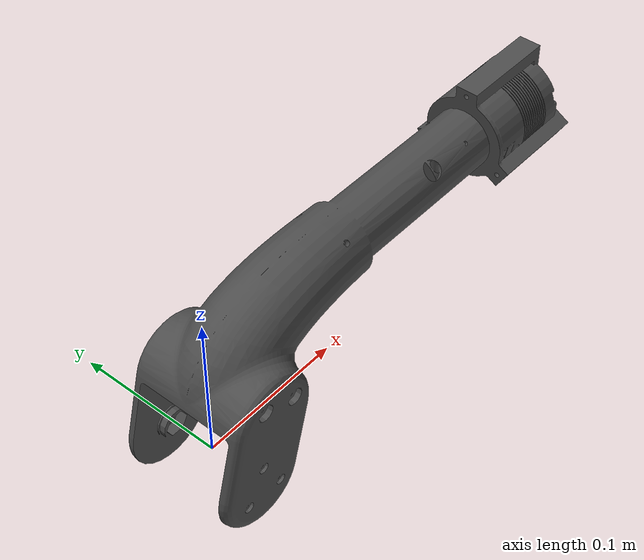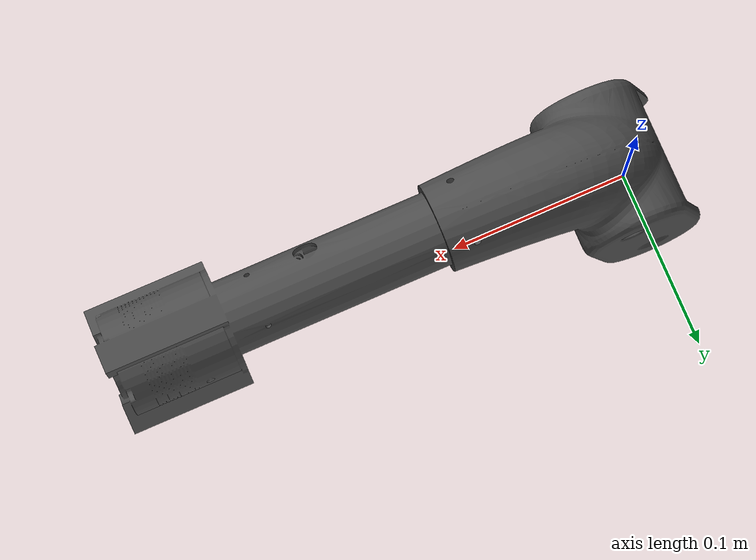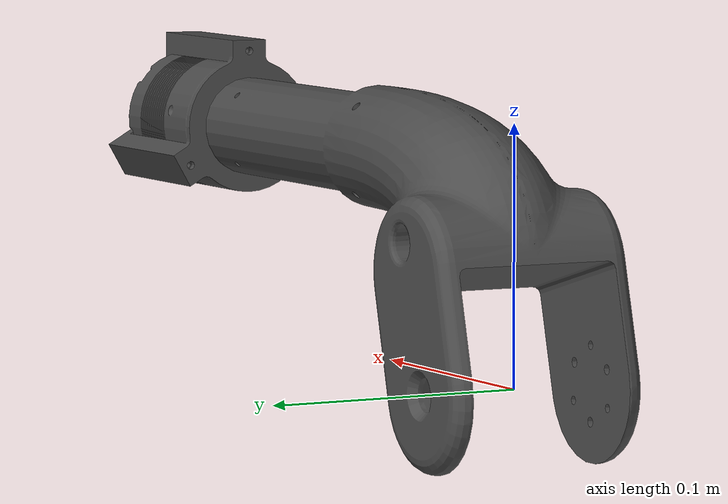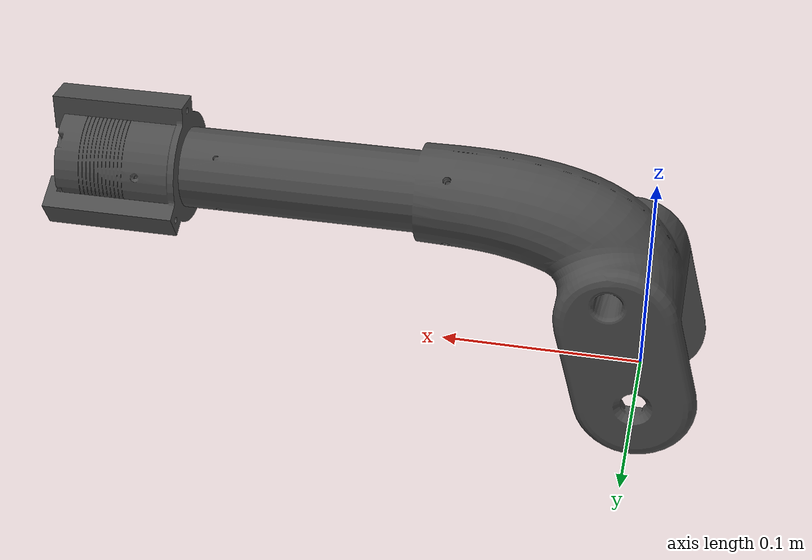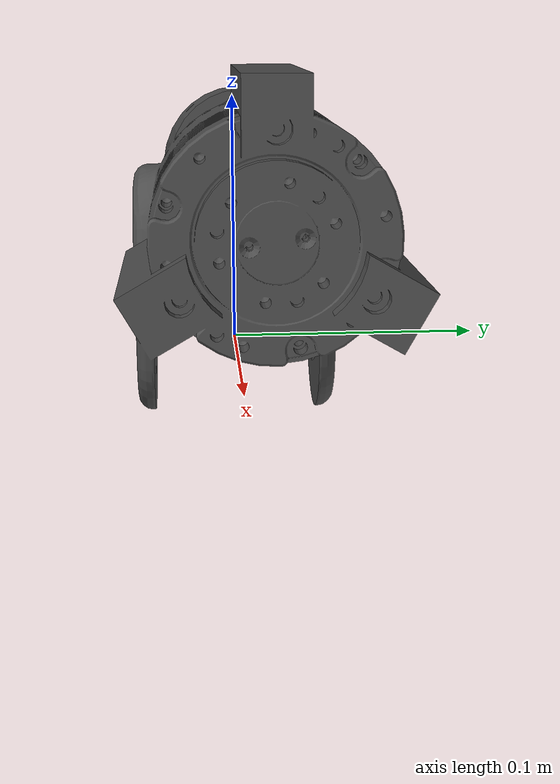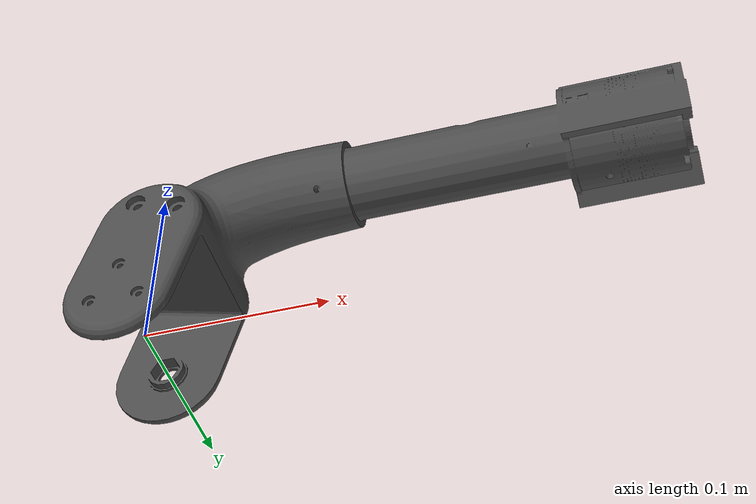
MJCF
<mujoco model="LINK3">
  <default>
    <default class="visual">
      <geom group="2" type="mesh" contype="0" conaffinity="0"/>
    </default>
    <default class="collision">
      <geom group="3" type="mesh"/>
    </default>
  </default>
  <asset>
    <material name="mtl_LINK3" specular="0.20000000000000004" shininess="1.0" rgba="0.29803922 0.29803922 0.29803922 1.0"/>
    <mesh file="LINK3.obj"/>
  </asset>
  <worldbody>
    <body name="LINK3">
      <geom material="mtl_LINK3" mesh="LINK3" class="visual"/>
      <geom mesh="LINK3" class="collision"/>
    </body>
  </worldbody>
</mujoco>
